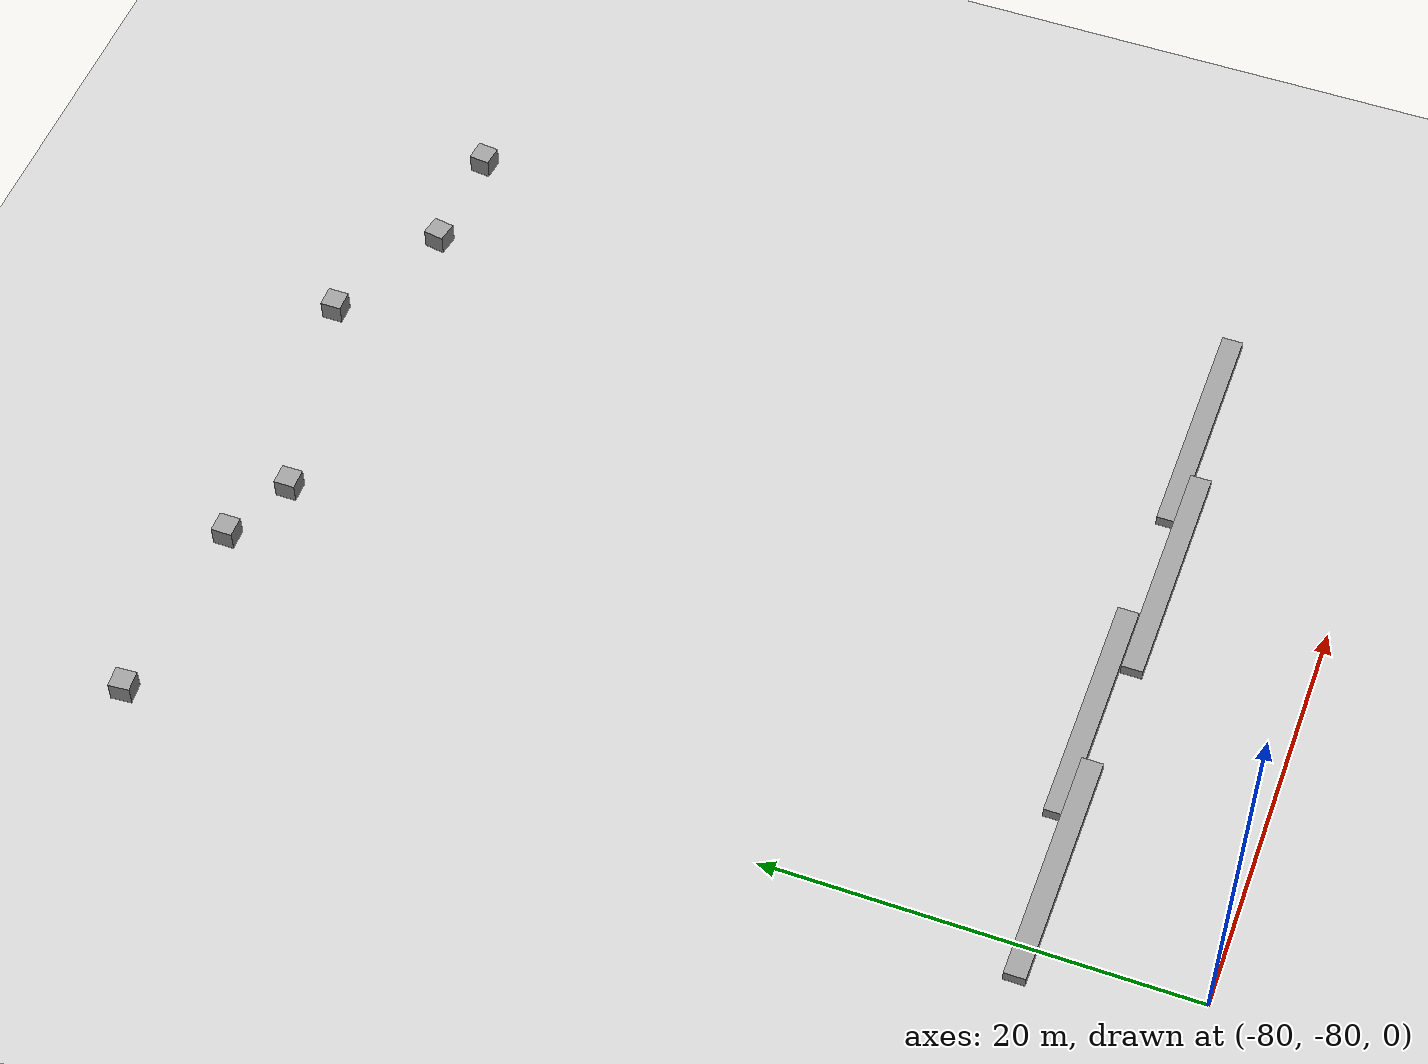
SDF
<sdf version="1.6">
 <world name="default">
  <model name="ground_plane">
   <static>1</static>
   <link name="link">
    <collision name="collision">
     <geometry><plane><normal>0 0 1</normal><size>100 100</size></plane></geometry>
     <surface><friction><ode><mu>100</mu><mu2>50</mu2></ode></friction></surface>
    </collision>
    <visual name="visual">
     <cast_shadows>0</cast_shadows>
     <geometry><plane><normal>0 0 1</normal><size>100 100</size></plane></geometry>
     <material>
      <script><uri>file://media/materials/scripts/gazebo.material</uri><name>Gazebo/Grey</name></script>
     </material>
    </visual>
   </link>
  </model>
  <model name="unit_box_0_clone_14_clone_0_clone_6">
   <pose>-46.7396 -33.5332 0.509904 -4.8e-05 -7e-06 -0.105575</pose>
   <link name="link">
    <inertial>
     <mass>1</mass>
     <inertia>
      <ixx>0.166667</ixx>
      <ixy>0</ixy>
      <ixz>0</ixz>
      <iyy>0.166667</iyy>
      <iyz>0</iyz>
      <izz>0.166667</izz>
     </inertia>
    </inertial>
    <collision name="collision"><geometry><box><size>1 1 1</size></box></geometry></collision>
    <visual name="visual">
     <geometry><box><size>1 1 1</size></box></geometry>
     <material>
      <script><name>Gazebo/Grey</name><uri>file://media/materials/scripts/gazebo.material</uri></script>
     </material>
    </visual>
   </link>
  </model>
  <model name="unit_box_0_clone_14_clone_0_clone_7">
   <pose>-52.1024 -33.3912 0.509024 0.000446 0.000106 -0.168583</pose>
   <link name="link">
    <inertial>
     <mass>1</mass>
     <inertia>
      <ixx>0.166667</ixx>
      <ixy>0</ixy>
      <ixz>0</ixz>
      <iyy>0.166667</iyy>
      <iyz>0</iyz>
      <izz>0.166667</izz>
     </inertia>
    </inertial>
    <collision name="collision"><geometry><box><size>1 1 1</size></box></geometry></collision>
    <visual name="visual">
     <geometry><box><size>1 1 1</size></box></geometry>
     <material>
      <script><name>Gazebo/Grey</name><uri>file://media/materials/scripts/gazebo.material</uri></script>
     </material>
    </visual>
   </link>
  </model>
  <model name="unit_box_0_clone_14_clone_0_clone_8">
   <pose>-57.9322 -30.4622 0.509998 -3e-06 2e-06 0.002409</pose>
   <link name="link">
    <inertial>
     <mass>1</mass>
     <inertia>
      <ixx>0.166667</ixx>
      <ixy>0</ixy>
      <ixz>0</ixz>
      <iyy>0.166667</iyy>
      <iyz>0</iyz>
      <izz>0.166667</izz>
     </inertia>
    </inertial>
    <collision name="collision"><geometry><box><size>1 1 1</size></box></geometry></collision>
    <visual name="visual">
     <geometry><box><size>1 1 1</size></box></geometry>
     <material>
      <script><name>Gazebo/Grey</name><uri>file://media/materials/scripts/gazebo.material</uri></script>
     </material>
    </visual>
   </link>
  </model>
  <model name="unit_box_0_clone_14_clone_0_clone_9">
   <pose>-68.4941 -32.8502 0.509943 1.9e-05 -1e-06 0.002646</pose>
   <link name="link">
    <inertial>
     <mass>1</mass>
     <inertia>
      <ixx>0.166667</ixx>
      <ixy>0</ixy>
      <ixz>0</ixz>
      <iyy>0.166667</iyy>
      <iyz>0</iyz>
      <izz>0.166667</izz>
     </inertia>
    </inertial>
    <collision name="collision"><geometry><box><size>1 1 1</size></box></geometry></collision>
    <visual name="visual">
     <geometry><box><size>1 1 1</size></box></geometry>
     <material>
      <script><name>Gazebo/Grey</name><uri>file://media/materials/scripts/gazebo.material</uri></script>
     </material>
    </visual>
   </link>
  </model>
  <model name="unit_box_0_clone_14_clone_0_clone_10">
   <pose>-71.9723 -31.3192 0.509989 0 0 -0.000396</pose>
   <link name="link">
    <inertial>
     <mass>1</mass>
     <inertia>
      <ixx>0.166667</ixx>
      <ixy>0</ixy>
      <ixz>0</ixz>
      <iyy>0.166667</iyy>
      <iyz>0</iyz>
      <izz>0.166667</izz>
     </inertia>
    </inertial>
    <collision name="collision"><geometry><box><size>1 1 1</size></box></geometry></collision>
    <visual name="visual">
     <geometry><box><size>1 1 1</size></box></geometry>
     <material>
      <script><name>Gazebo/Grey</name><uri>file://media/materials/scripts/gazebo.material</uri></script>
     </material>
    </visual>
   </link>
  </model>
  <model name="unit_box_0_clone_14_clone_0_clone_12">
   <pose>-81.2751 -30.6674 0.504284 0.004435 0.001759 0.080386</pose>
   <link name="link">
    <inertial>
     <mass>1</mass>
     <inertia>
      <ixx>0.166667</ixx>
      <ixy>0</ixy>
      <ixz>0</ixz>
      <iyy>0.166667</iyy>
      <iyz>0</iyz>
      <izz>0.166667</izz>
     </inertia>
    </inertial>
    <collision name="collision"><geometry><box><size>1 1 1</size></box></geometry></collision>
    <visual name="visual">
     <geometry><box><size>1 1 1</size></box></geometry>
     <material>
      <script><name>Gazebo/Grey</name><uri>file://media/materials/scripts/gazebo.material</uri></script>
     </material>
    </visual>
   </link>
  </model>
  <model name="unit_box_0_static_clone">
   <link name="link">
    <inertial>
     <mass>11.3696</mass>
     <inertia><ixx>1.89495</ixx><ixy>0</ixy><ixz>0</ixz><iyy>123.426</iyy><iyz>0</iyz><izz>123.426</izz></inertia>
    </inertial>
    <kinematic>1</kinematic>
    <visual name="visual">
     <geometry><box><size>11.3696 1 1</size></box></geometry>
     <material>
      <script><name>Gazebo/Grey</name><uri>file://media/materials/scripts/gazebo.material</uri></script>
      <ambient>0.3 0.3 0.3 1</ambient>
      <diffuse>0.7 0.7 0.7 1</diffuse>
      <specular>0.01 0.01 0.01 1</specular>
      <emissive>0 0 0 1</emissive>
     </material>
    </visual>
    <collision name="collision">
     <geometry><box><size>11.3696 1 1</size></box></geometry>
     <surface>
      <friction>
       <ode><mu>1</mu><mu2>1</mu2><fdir1>0 0 0</fdir1><slip1>0</slip1><slip2>0</slip2></ode>
       <torsional>
        <coefficient>1</coefficient>
        <patch_radius>0</patch_radius>
        <surface_radius>0</surface_radius>
        <use_patch_radius>1</use_patch_radius>
        <ode><slip>0</slip></ode>
       </torsional>
      </friction>
      <bounce><restitution_coefficient>0</restitution_coefficient><threshold>1e+06</threshold></bounce>
      <contact>
       <collide_without_contact>0</collide_without_contact>
       <collide_without_contact_bitmask>1</collide_without_contact_bitmask>
       <collide_bitmask>1</collide_bitmask>
       <ode>
        <soft_cfm>0</soft_cfm>
        <soft_erp>0.2</soft_erp>
        <kp>1e+13</kp>
        <kd>1</kd>
        <max_vel>0.01</max_vel>
        <min_depth>0</min_depth>
       </ode>
       <bullet>
        <split_impulse>1</split_impulse>
        <split_impulse_penetration_threshold>-0.01</split_impulse_penetration_threshold>
        <soft_cfm>0</soft_cfm>
        <soft_erp>0.2</soft_erp>
        <kp>1e+13</kp>
        <kd>1</kd>
       </bullet>
      </contact>
     </surface>
    </collision>
   </link>
   <static>1</static>
   <pose>-76.0243 -72.0413 0 0 -0 0</pose>
  </model>
  <model name="unit_box_0_static_clone_0">
   <link name="link">
    <inertial>
     <mass>11.3696</mass>
     <inertia><ixx>1.89495</ixx><ixy>0</ixy><ixz>0</ixz><iyy>123.426</iyy><iyz>0</iyz><izz>123.426</izz></inertia>
    </inertial>
    <kinematic>1</kinematic>
    <visual name="visual">
     <geometry><box><size>11.3696 1 1</size></box></geometry>
     <material>
      <script><name>Gazebo/Grey</name><uri>file://media/materials/scripts/gazebo.material</uri></script>
      <ambient>0.3 0.3 0.3 1</ambient>
      <diffuse>0.7 0.7 0.7 1</diffuse>
      <specular>0.01 0.01 0.01 1</specular>
      <emissive>0 0 0 1</emissive>
     </material>
    </visual>
    <collision name="collision">
     <geometry><box><size>11.3696 1 1</size></box></geometry>
     <surface>
      <friction>
       <ode><mu>1</mu><mu2>1</mu2><fdir1>0 0 0</fdir1><slip1>0</slip1><slip2>0</slip2></ode>
       <torsional>
        <coefficient>1</coefficient>
        <patch_radius>0</patch_radius>
        <surface_radius>0</surface_radius>
        <use_patch_radius>1</use_patch_radius>
        <ode><slip>0</slip></ode>
       </torsional>
      </friction>
      <bounce><restitution_coefficient>0</restitution_coefficient><threshold>1e+06</threshold></bounce>
      <contact>
       <collide_without_contact>0</collide_without_contact>
       <collide_without_contact_bitmask>1</collide_without_contact_bitmask>
       <collide_bitmask>1</collide_bitmask>
       <ode>
        <soft_cfm>0</soft_cfm>
        <soft_erp>0.2</soft_erp>
        <kp>1e+13</kp>
        <kd>1</kd>
        <max_vel>0.01</max_vel>
        <min_depth>0</min_depth>
       </ode>
       <bullet>
        <split_impulse>1</split_impulse>
        <split_impulse_penetration_threshold>-0.01</split_impulse_penetration_threshold>
        <soft_cfm>0</soft_cfm>
        <soft_erp>0.2</soft_erp>
        <kp>1e+13</kp>
        <kd>1</kd>
       </bullet>
      </contact>
     </surface>
    </collision>
   </link>
   <static>1</static>
   <pose>-67.7608 -71.2481 0 0 -0 0</pose>
  </model>
  <model name="unit_box_0_static_clone_1">
   <link name="link">
    <inertial>
     <mass>11.3696</mass>
     <inertia><ixx>1.89495</ixx><ixy>0</ixy><ixz>0</ixz><iyy>123.426</iyy><iyz>0</iyz><izz>123.426</izz></inertia>
    </inertial>
    <kinematic>1</kinematic>
    <visual name="visual">
     <geometry><box><size>11.3696 1 1</size></box></geometry>
     <material>
      <script><name>Gazebo/Grey</name><uri>file://media/materials/scripts/gazebo.material</uri></script>
      <ambient>0.3 0.3 0.3 1</ambient>
      <diffuse>0.7 0.7 0.7 1</diffuse>
      <specular>0.01 0.01 0.01 1</specular>
      <emissive>0 0 0 1</emissive>
     </material>
    </visual>
    <collision name="collision">
     <geometry><box><size>11.3696 1 1</size></box></geometry>
     <surface>
      <friction>
       <ode><mu>1</mu><mu2>1</mu2><fdir1>0 0 0</fdir1><slip1>0</slip1><slip2>0</slip2></ode>
       <torsional>
        <coefficient>1</coefficient>
        <patch_radius>0</patch_radius>
        <surface_radius>0</surface_radius>
        <use_patch_radius>1</use_patch_radius>
        <ode><slip>0</slip></ode>
       </torsional>
      </friction>
      <bounce><restitution_coefficient>0</restitution_coefficient><threshold>1e+06</threshold></bounce>
      <contact>
       <collide_without_contact>0</collide_without_contact>
       <collide_without_contact_bitmask>1</collide_without_contact_bitmask>
       <collide_bitmask>1</collide_bitmask>
       <ode>
        <soft_cfm>0</soft_cfm>
        <soft_erp>0.2</soft_erp>
        <kp>1e+13</kp>
        <kd>1</kd>
        <max_vel>0.01</max_vel>
        <min_depth>0</min_depth>
       </ode>
       <bullet>
        <split_impulse>1</split_impulse>
        <split_impulse_penetration_threshold>-0.01</split_impulse_penetration_threshold>
        <soft_cfm>0</soft_cfm>
        <soft_erp>0.2</soft_erp>
        <kp>1e+13</kp>
        <kd>1</kd>
       </bullet>
      </contact>
     </surface>
    </collision>
   </link>
   <static>1</static>
   <pose>-59.4096 -72.2912 0 0 -0 0</pose>
  </model>
  <model name="unit_box_0_static_clone_2">
   <link name="link">
    <inertial>
     <mass>11.3696</mass>
     <inertia><ixx>1.89495</ixx><ixy>0</ixy><ixz>0</ixz><iyy>123.426</iyy><iyz>0</iyz><izz>123.426</izz></inertia>
    </inertial>
    <kinematic>1</kinematic>
    <visual name="visual">
     <geometry><box><size>11.3696 1 1</size></box></geometry>
     <material>
      <script><name>Gazebo/Grey</name><uri>file://media/materials/scripts/gazebo.material</uri></script>
      <ambient>0.3 0.3 0.3 1</ambient>
      <diffuse>0.7 0.7 0.7 1</diffuse>
      <specular>0.01 0.01 0.01 1</specular>
      <emissive>0 0 0 1</emissive>
     </material>
    </visual>
    <collision name="collision">
     <geometry><box><size>11.3696 1 1</size></box></geometry>
     <surface>
      <friction>
       <ode><mu>1</mu><mu2>1</mu2><fdir1>0 0 0</fdir1><slip1>0</slip1><slip2>0</slip2></ode>
       <torsional>
        <coefficient>1</coefficient>
        <patch_radius>0</patch_radius>
        <surface_radius>0</surface_radius>
        <use_patch_radius>1</use_patch_radius>
        <ode><slip>0</slip></ode>
       </torsional>
      </friction>
      <bounce><restitution_coefficient>0</restitution_coefficient><threshold>1e+06</threshold></bounce>
      <contact>
       <collide_without_contact>0</collide_without_contact>
       <collide_without_contact_bitmask>1</collide_without_contact_bitmask>
       <collide_bitmask>1</collide_bitmask>
       <ode>
        <soft_cfm>0</soft_cfm>
        <soft_erp>0.2</soft_erp>
        <kp>1e+13</kp>
        <kd>1</kd>
        <max_vel>0.01</max_vel>
        <min_depth>0</min_depth>
       </ode>
       <bullet>
        <split_impulse>1</split_impulse>
        <split_impulse_penetration_threshold>-0.01</split_impulse_penetration_threshold>
        <soft_cfm>0</soft_cfm>
        <soft_erp>0.2</soft_erp>
        <kp>1e+13</kp>
        <kd>1</kd>
       </bullet>
      </contact>
     </surface>
    </collision>
   </link>
   <static>1</static>
   <pose>-50.8956 -71.4735 0 0 -0 0</pose>
  </model>
 </world>
</sdf>
